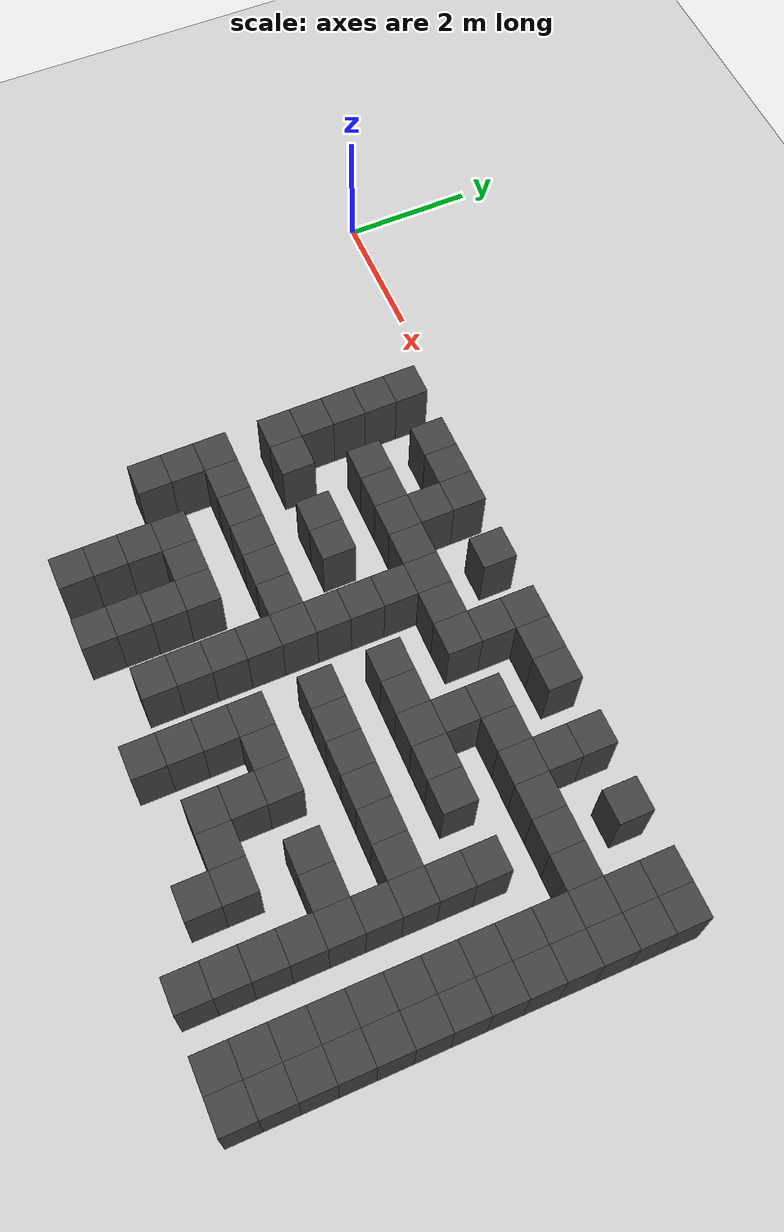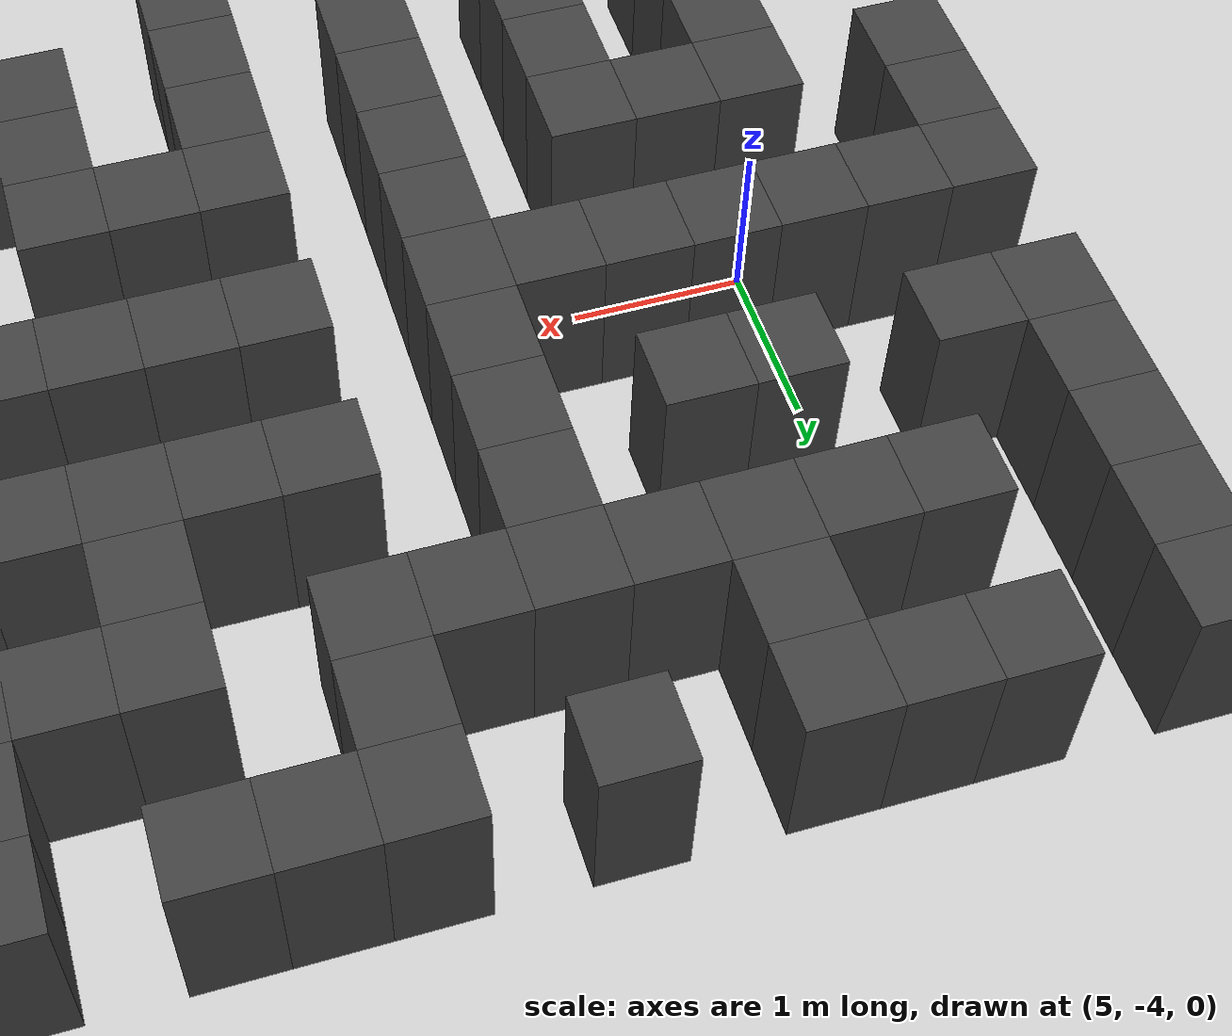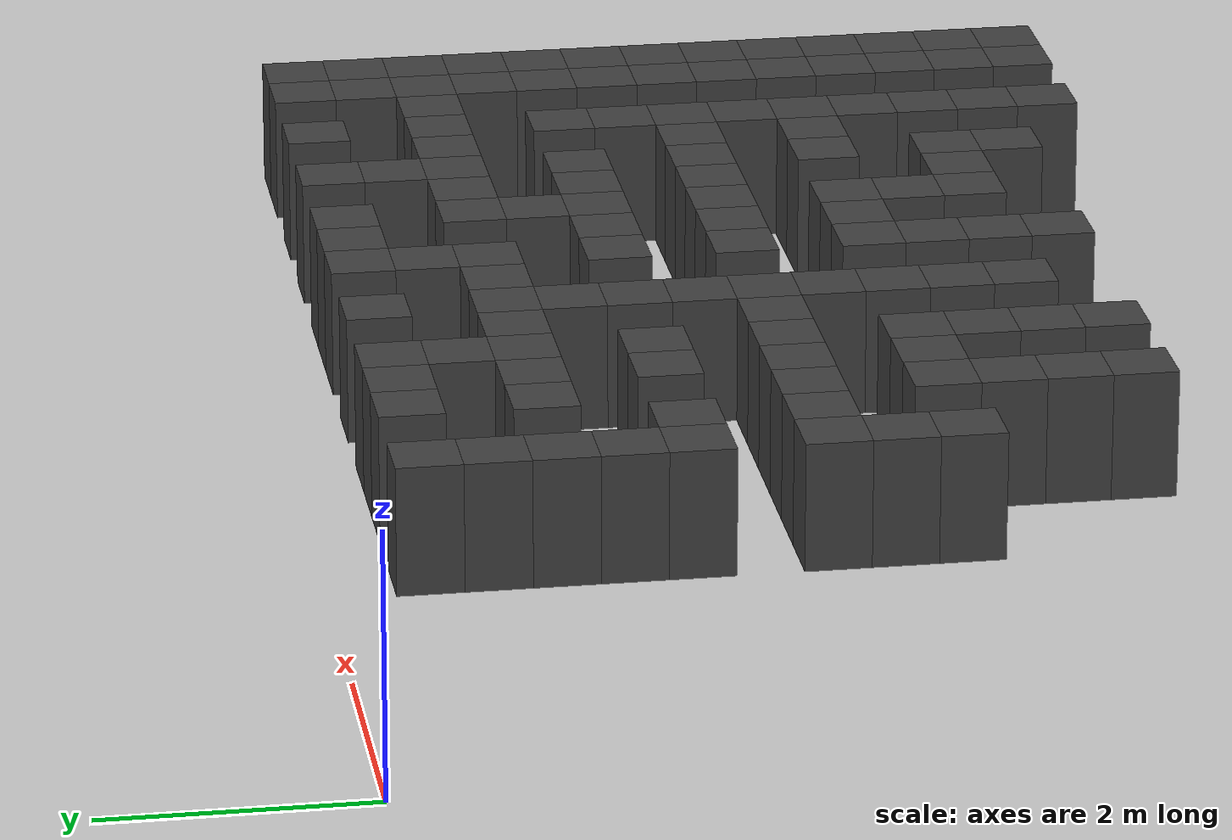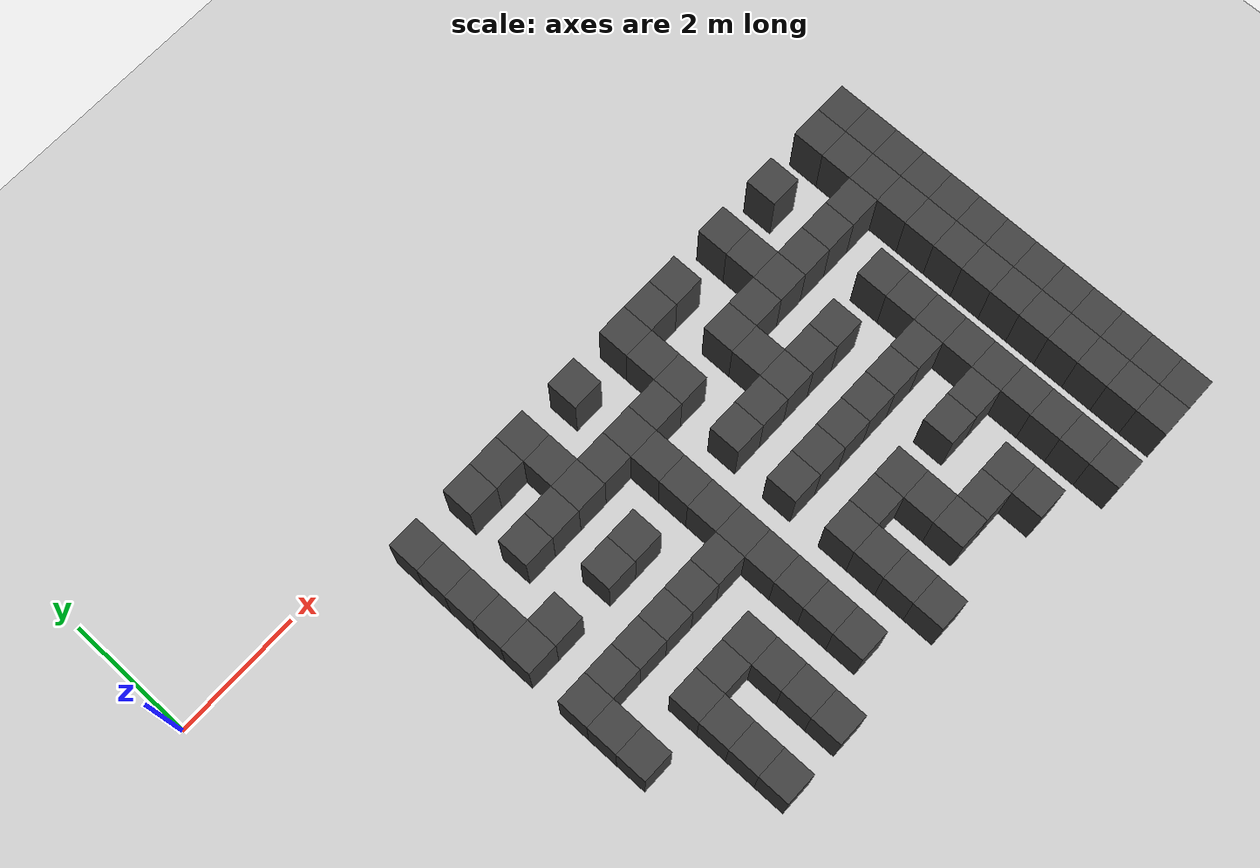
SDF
<sdf version="1.7">
 <world name="map_18228">
  <model name="ground_plane">
   <static>true</static>
   <link name="link">
    <collision name="collision">
     <geometry><plane><normal>0 0 1</normal><size>200 200</size></plane></geometry>
    </collision>
    <visual name="visual">
     <geometry><plane><normal>0 0 1</normal><size>200 200</size></plane></geometry>
     <material><ambient>0.8 0.8 0.8 1</ambient><diffuse>0.8 0.8 0.8 1</diffuse></material>
    </visual>
   </link>
  </model>
  <model name="maze_environment">
   <static>true</static>
   <link name="wall_674">
    <pose>3.750 -0.750 0.500 0 0 0</pose>
    <collision name="col"><geometry><box><size>0.5 0.5 1.0</size></box></geometry></collision>
    <visual name="vis">
     <geometry><box><size>0.5 0.5 1.0</size></box></geometry>
     <material><ambient>0.15 0.15 0.15 1</ambient><diffuse>0.25 0.25 0.25 1</diffuse></material>
    </visual>
   </link>
   <link name="wall_675">
    <pose>4.750 -0.750 0.500 0 0 0</pose>
    <collision name="col"><geometry><box><size>0.5 0.5 1.0</size></box></geometry></collision>
    <visual name="vis">
     <geometry><box><size>0.5 0.5 1.0</size></box></geometry>
     <material><ambient>0.15 0.15 0.15 1</ambient><diffuse>0.25 0.25 0.25 1</diffuse></material>
    </visual>
   </link>
   <link name="wall_676">
    <pose>5.250 -0.750 0.500 0 0 0</pose>
    <collision name="col"><geometry><box><size>0.5 0.5 1.0</size></box></geometry></collision>
    <visual name="vis">
     <geometry><box><size>0.5 0.5 1.0</size></box></geometry>
     <material><ambient>0.15 0.15 0.15 1</ambient><diffuse>0.25 0.25 0.25 1</diffuse></material>
    </visual>
   </link>
   <link name="wall_677">
    <pose>5.750 -0.750 0.500 0 0 0</pose>
    <collision name="col"><geometry><box><size>0.5 0.5 1.0</size></box></geometry></collision>
    <visual name="vis">
     <geometry><box><size>0.5 0.5 1.0</size></box></geometry>
     <material><ambient>0.15 0.15 0.15 1</ambient><diffuse>0.25 0.25 0.25 1</diffuse></material>
    </visual>
   </link>
   <link name="wall_678">
    <pose>6.750 -0.750 0.500 0 0 0</pose>
    <collision name="col"><geometry><box><size>0.5 0.5 1.0</size></box></geometry></collision>
    <visual name="vis">
     <geometry><box><size>0.5 0.5 1.0</size></box></geometry>
     <material><ambient>0.15 0.15 0.15 1</ambient><diffuse>0.25 0.25 0.25 1</diffuse></material>
    </visual>
   </link>
   <link name="wall_679">
    <pose>7.750 -0.750 0.500 0 0 0</pose>
    <collision name="col"><geometry><box><size>0.5 0.5 1.0</size></box></geometry></collision>
    <visual name="vis">
     <geometry><box><size>0.5 0.5 1.0</size></box></geometry>
     <material><ambient>0.15 0.15 0.15 1</ambient><diffuse>0.25 0.25 0.25 1</diffuse></material>
    </visual>
   </link>
   <link name="wall_680">
    <pose>8.250 -0.750 0.500 0 0 0</pose>
    <collision name="col"><geometry><box><size>0.5 0.5 1.0</size></box></geometry></collision>
    <visual name="vis">
     <geometry><box><size>0.5 0.5 1.0</size></box></geometry>
     <material><ambient>0.15 0.15 0.15 1</ambient><diffuse>0.25 0.25 0.25 1</diffuse></material>
    </visual>
   </link>
   <link name="wall_681">
    <pose>8.750 -0.750 0.500 0 0 0</pose>
    <collision name="col"><geometry><box><size>0.5 0.5 1.0</size></box></geometry></collision>
    <visual name="vis">
     <geometry><box><size>0.5 0.5 1.0</size></box></geometry>
     <material><ambient>0.15 0.15 0.15 1</ambient><diffuse>0.25 0.25 0.25 1</diffuse></material>
    </visual>
   </link>
   <link name="wall_682">
    <pose>9.750 -0.750 0.500 0 0 0</pose>
    <collision name="col"><geometry><box><size>0.5 0.5 1.0</size></box></geometry></collision>
    <visual name="vis">
     <geometry><box><size>0.5 0.5 1.0</size></box></geometry>
     <material><ambient>0.15 0.15 0.15 1</ambient><diffuse>0.25 0.25 0.25 1</diffuse></material>
    </visual>
   </link>
   <link name="wall_683">
    <pose>10.750 -0.750 0.500 0 0 0</pose>
    <collision name="col"><geometry><box><size>0.5 0.5 1.0</size></box></geometry></collision>
    <visual name="vis">
     <geometry><box><size>0.5 0.5 1.0</size></box></geometry>
     <material><ambient>0.15 0.15 0.15 1</ambient><diffuse>0.25 0.25 0.25 1</diffuse></material>
    </visual>
   </link>
   <link name="wall_684">
    <pose>11.750 -0.750 0.500 0 0 0</pose>
    <collision name="col"><geometry><box><size>0.5 0.5 1.0</size></box></geometry></collision>
    <visual name="vis">
     <geometry><box><size>0.5 0.5 1.0</size></box></geometry>
     <material><ambient>0.15 0.15 0.15 1</ambient><diffuse>0.25 0.25 0.25 1</diffuse></material>
    </visual>
   </link>
   <link name="wall_685">
    <pose>12.250 -0.750 0.500 0 0 0</pose>
    <collision name="col"><geometry><box><size>0.5 0.5 1.0</size></box></geometry></collision>
    <visual name="vis">
     <geometry><box><size>0.5 0.5 1.0</size></box></geometry>
     <material><ambient>0.15 0.15 0.15 1</ambient><diffuse>0.25 0.25 0.25 1</diffuse></material>
    </visual>
   </link>
   <link name="wall_694">
    <pose>3.750 -1.250 0.500 0 0 0</pose>
    <collision name="col"><geometry><box><size>0.5 0.5 1.0</size></box></geometry></collision>
    <visual name="vis">
     <geometry><box><size>0.5 0.5 1.0</size></box></geometry>
     <material><ambient>0.15 0.15 0.15 1</ambient><diffuse>0.25 0.25 0.25 1</diffuse></material>
    </visual>
   </link>
   <link name="wall_695">
    <pose>5.750 -1.250 0.500 0 0 0</pose>
    <collision name="col"><geometry><box><size>0.5 0.5 1.0</size></box></geometry></collision>
    <visual name="vis">
     <geometry><box><size>0.5 0.5 1.0</size></box></geometry>
     <material><ambient>0.15 0.15 0.15 1</ambient><diffuse>0.25 0.25 0.25 1</diffuse></material>
    </visual>
   </link>
   <link name="wall_696">
    <pose>7.750 -1.250 0.500 0 0 0</pose>
    <collision name="col"><geometry><box><size>0.5 0.5 1.0</size></box></geometry></collision>
    <visual name="vis">
     <geometry><box><size>0.5 0.5 1.0</size></box></geometry>
     <material><ambient>0.15 0.15 0.15 1</ambient><diffuse>0.25 0.25 0.25 1</diffuse></material>
    </visual>
   </link>
   <link name="wall_697">
    <pose>9.750 -1.250 0.500 0 0 0</pose>
    <collision name="col"><geometry><box><size>0.5 0.5 1.0</size></box></geometry></collision>
    <visual name="vis">
     <geometry><box><size>0.5 0.5 1.0</size></box></geometry>
     <material><ambient>0.15 0.15 0.15 1</ambient><diffuse>0.25 0.25 0.25 1</diffuse></material>
    </visual>
   </link>
   <link name="wall_698">
    <pose>11.750 -1.250 0.500 0 0 0</pose>
    <collision name="col"><geometry><box><size>0.5 0.5 1.0</size></box></geometry></collision>
    <visual name="vis">
     <geometry><box><size>0.5 0.5 1.0</size></box></geometry>
     <material><ambient>0.15 0.15 0.15 1</ambient><diffuse>0.25 0.25 0.25 1</diffuse></material>
    </visual>
   </link>
   <link name="wall_699">
    <pose>12.250 -1.250 0.500 0 0 0</pose>
    <collision name="col"><geometry><box><size>0.5 0.5 1.0</size></box></geometry></collision>
    <visual name="vis">
     <geometry><box><size>0.5 0.5 1.0</size></box></geometry>
     <material><ambient>0.15 0.15 0.15 1</ambient><diffuse>0.25 0.25 0.25 1</diffuse></material>
    </visual>
   </link>
   <link name="wall_722">
    <pose>3.750 -1.750 0.500 0 0 0</pose>
    <collision name="col"><geometry><box><size>0.5 0.5 1.0</size></box></geometry></collision>
    <visual name="vis">
     <geometry><box><size>0.5 0.5 1.0</size></box></geometry>
     <material><ambient>0.15 0.15 0.15 1</ambient><diffuse>0.25 0.25 0.25 1</diffuse></material>
    </visual>
   </link>
   <link name="wall_723">
    <pose>4.750 -1.750 0.500 0 0 0</pose>
    <collision name="col"><geometry><box><size>0.5 0.5 1.0</size></box></geometry></collision>
    <visual name="vis">
     <geometry><box><size>0.5 0.5 1.0</size></box></geometry>
     <material><ambient>0.15 0.15 0.15 1</ambient><diffuse>0.25 0.25 0.25 1</diffuse></material>
    </visual>
   </link>
   <link name="wall_724">
    <pose>5.250 -1.750 0.500 0 0 0</pose>
    <collision name="col"><geometry><box><size>0.5 0.5 1.0</size></box></geometry></collision>
    <visual name="vis">
     <geometry><box><size>0.5 0.5 1.0</size></box></geometry>
     <material><ambient>0.15 0.15 0.15 1</ambient><diffuse>0.25 0.25 0.25 1</diffuse></material>
    </visual>
   </link>
   <link name="wall_725">
    <pose>5.750 -1.750 0.500 0 0 0</pose>
    <collision name="col"><geometry><box><size>0.5 0.5 1.0</size></box></geometry></collision>
    <visual name="vis">
     <geometry><box><size>0.5 0.5 1.0</size></box></geometry>
     <material><ambient>0.15 0.15 0.15 1</ambient><diffuse>0.25 0.25 0.25 1</diffuse></material>
    </visual>
   </link>
   <link name="wall_726">
    <pose>6.250 -1.750 0.500 0 0 0</pose>
    <collision name="col"><geometry><box><size>0.5 0.5 1.0</size></box></geometry></collision>
    <visual name="vis">
     <geometry><box><size>0.5 0.5 1.0</size></box></geometry>
     <material><ambient>0.15 0.15 0.15 1</ambient><diffuse>0.25 0.25 0.25 1</diffuse></material>
    </visual>
   </link>
   <link name="wall_727">
    <pose>6.750 -1.750 0.500 0 0 0</pose>
    <collision name="col"><geometry><box><size>0.5 0.5 1.0</size></box></geometry></collision>
    <visual name="vis">
     <geometry><box><size>0.5 0.5 1.0</size></box></geometry>
     <material><ambient>0.15 0.15 0.15 1</ambient><diffuse>0.25 0.25 0.25 1</diffuse></material>
    </visual>
   </link>
   <link name="wall_728">
    <pose>7.250 -1.750 0.500 0 0 0</pose>
    <collision name="col"><geometry><box><size>0.5 0.5 1.0</size></box></geometry></collision>
    <visual name="vis">
     <geometry><box><size>0.5 0.5 1.0</size></box></geometry>
     <material><ambient>0.15 0.15 0.15 1</ambient><diffuse>0.25 0.25 0.25 1</diffuse></material>
    </visual>
   </link>
   <link name="wall_729">
    <pose>7.750 -1.750 0.500 0 0 0</pose>
    <collision name="col"><geometry><box><size>0.5 0.5 1.0</size></box></geometry></collision>
    <visual name="vis">
     <geometry><box><size>0.5 0.5 1.0</size></box></geometry>
     <material><ambient>0.15 0.15 0.15 1</ambient><diffuse>0.25 0.25 0.25 1</diffuse></material>
    </visual>
   </link>
   <link name="wall_730">
    <pose>8.750 -1.750 0.500 0 0 0</pose>
    <collision name="col"><geometry><box><size>0.5 0.5 1.0</size></box></geometry></collision>
    <visual name="vis">
     <geometry><box><size>0.5 0.5 1.0</size></box></geometry>
     <material><ambient>0.15 0.15 0.15 1</ambient><diffuse>0.25 0.25 0.25 1</diffuse></material>
    </visual>
   </link>
   <link name="wall_731">
    <pose>9.250 -1.750 0.500 0 0 0</pose>
    <collision name="col"><geometry><box><size>0.5 0.5 1.0</size></box></geometry></collision>
    <visual name="vis">
     <geometry><box><size>0.5 0.5 1.0</size></box></geometry>
     <material><ambient>0.15 0.15 0.15 1</ambient><diffuse>0.25 0.25 0.25 1</diffuse></material>
    </visual>
   </link>
   <link name="wall_732">
    <pose>9.750 -1.750 0.500 0 0 0</pose>
    <collision name="col"><geometry><box><size>0.5 0.5 1.0</size></box></geometry></collision>
    <visual name="vis">
     <geometry><box><size>0.5 0.5 1.0</size></box></geometry>
     <material><ambient>0.15 0.15 0.15 1</ambient><diffuse>0.25 0.25 0.25 1</diffuse></material>
    </visual>
   </link>
   <link name="wall_733">
    <pose>10.250 -1.750 0.500 0 0 0</pose>
    <collision name="col"><geometry><box><size>0.5 0.5 1.0</size></box></geometry></collision>
    <visual name="vis">
     <geometry><box><size>0.5 0.5 1.0</size></box></geometry>
     <material><ambient>0.15 0.15 0.15 1</ambient><diffuse>0.25 0.25 0.25 1</diffuse></material>
    </visual>
   </link>
   <link name="wall_734">
    <pose>10.750 -1.750 0.500 0 0 0</pose>
    <collision name="col"><geometry><box><size>0.5 0.5 1.0</size></box></geometry></collision>
    <visual name="vis">
     <geometry><box><size>0.5 0.5 1.0</size></box></geometry>
     <material><ambient>0.15 0.15 0.15 1</ambient><diffuse>0.25 0.25 0.25 1</diffuse></material>
    </visual>
   </link>
   <link name="wall_735">
    <pose>11.250 -1.750 0.500 0 0 0</pose>
    <collision name="col"><geometry><box><size>0.5 0.5 1.0</size></box></geometry></collision>
    <visual name="vis">
     <geometry><box><size>0.5 0.5 1.0</size></box></geometry>
     <material><ambient>0.15 0.15 0.15 1</ambient><diffuse>0.25 0.25 0.25 1</diffuse></material>
    </visual>
   </link>
   <link name="wall_736">
    <pose>11.750 -1.750 0.500 0 0 0</pose>
    <collision name="col"><geometry><box><size>0.5 0.5 1.0</size></box></geometry></collision>
    <visual name="vis">
     <geometry><box><size>0.5 0.5 1.0</size></box></geometry>
     <material><ambient>0.15 0.15 0.15 1</ambient><diffuse>0.25 0.25 0.25 1</diffuse></material>
    </visual>
   </link>
   <link name="wall_737">
    <pose>12.250 -1.750 0.500 0 0 0</pose>
    <collision name="col"><geometry><box><size>0.5 0.5 1.0</size></box></geometry></collision>
    <visual name="vis">
     <geometry><box><size>0.5 0.5 1.0</size></box></geometry>
     <material><ambient>0.15 0.15 0.15 1</ambient><diffuse>0.25 0.25 0.25 1</diffuse></material>
    </visual>
   </link>
   <link name="wall_747">
    <pose>3.750 -2.250 0.500 0 0 0</pose>
    <collision name="col"><geometry><box><size>0.5 0.5 1.0</size></box></geometry></collision>
    <visual name="vis">
     <geometry><box><size>0.5 0.5 1.0</size></box></geometry>
     <material><ambient>0.15 0.15 0.15 1</ambient><diffuse>0.25 0.25 0.25 1</diffuse></material>
    </visual>
   </link>
   <link name="wall_748">
    <pose>6.750 -2.250 0.500 0 0 0</pose>
    <collision name="col"><geometry><box><size>0.5 0.5 1.0</size></box></geometry></collision>
    <visual name="vis">
     <geometry><box><size>0.5 0.5 1.0</size></box></geometry>
     <material><ambient>0.15 0.15 0.15 1</ambient><diffuse>0.25 0.25 0.25 1</diffuse></material>
    </visual>
   </link>
   <link name="wall_749">
    <pose>8.750 -2.250 0.500 0 0 0</pose>
    <collision name="col"><geometry><box><size>0.5 0.5 1.0</size></box></geometry></collision>
    <visual name="vis">
     <geometry><box><size>0.5 0.5 1.0</size></box></geometry>
     <material><ambient>0.15 0.15 0.15 1</ambient><diffuse>0.25 0.25 0.25 1</diffuse></material>
    </visual>
   </link>
   <link name="wall_750">
    <pose>11.750 -2.250 0.500 0 0 0</pose>
    <collision name="col"><geometry><box><size>0.5 0.5 1.0</size></box></geometry></collision>
    <visual name="vis">
     <geometry><box><size>0.5 0.5 1.0</size></box></geometry>
     <material><ambient>0.15 0.15 0.15 1</ambient><diffuse>0.25 0.25 0.25 1</diffuse></material>
    </visual>
   </link>
   <link name="wall_751">
    <pose>12.250 -2.250 0.500 0 0 0</pose>
    <collision name="col"><geometry><box><size>0.5 0.5 1.0</size></box></geometry></collision>
    <visual name="vis">
     <geometry><box><size>0.5 0.5 1.0</size></box></geometry>
     <material><ambient>0.15 0.15 0.15 1</ambient><diffuse>0.25 0.25 0.25 1</diffuse></material>
    </visual>
   </link>
   <link name="wall_773">
    <pose>3.750 -2.750 0.500 0 0 0</pose>
    <collision name="col"><geometry><box><size>0.5 0.5 1.0</size></box></geometry></collision>
    <visual name="vis">
     <geometry><box><size>0.5 0.5 1.0</size></box></geometry>
     <material><ambient>0.15 0.15 0.15 1</ambient><diffuse>0.25 0.25 0.25 1</diffuse></material>
    </visual>
   </link>
   <link name="wall_774">
    <pose>4.250 -2.750 0.500 0 0 0</pose>
    <collision name="col"><geometry><box><size>0.5 0.5 1.0</size></box></geometry></collision>
    <visual name="vis">
     <geometry><box><size>0.5 0.5 1.0</size></box></geometry>
     <material><ambient>0.15 0.15 0.15 1</ambient><diffuse>0.25 0.25 0.25 1</diffuse></material>
    </visual>
   </link>
   <link name="wall_775">
    <pose>5.250 -2.750 0.500 0 0 0</pose>
    <collision name="col"><geometry><box><size>0.5 0.5 1.0</size></box></geometry></collision>
    <visual name="vis">
     <geometry><box><size>0.5 0.5 1.0</size></box></geometry>
     <material><ambient>0.15 0.15 0.15 1</ambient><diffuse>0.25 0.25 0.25 1</diffuse></material>
    </visual>
   </link>
   <link name="wall_776">
    <pose>5.750 -2.750 0.500 0 0 0</pose>
    <collision name="col"><geometry><box><size>0.5 0.5 1.0</size></box></geometry></collision>
    <visual name="vis">
     <geometry><box><size>0.5 0.5 1.0</size></box></geometry>
     <material><ambient>0.15 0.15 0.15 1</ambient><diffuse>0.25 0.25 0.25 1</diffuse></material>
    </visual>
   </link>
   <link name="wall_777">
    <pose>6.750 -2.750 0.500 0 0 0</pose>
    <collision name="col"><geometry><box><size>0.5 0.5 1.0</size></box></geometry></collision>
    <visual name="vis">
     <geometry><box><size>0.5 0.5 1.0</size></box></geometry>
     <material><ambient>0.15 0.15 0.15 1</ambient><diffuse>0.25 0.25 0.25 1</diffuse></material>
    </visual>
   </link>
   <link name="wall_778">
    <pose>7.750 -2.750 0.500 0 0 0</pose>
    <collision name="col"><geometry><box><size>0.5 0.5 1.0</size></box></geometry></collision>
    <visual name="vis">
     <geometry><box><size>0.5 0.5 1.0</size></box></geometry>
     <material><ambient>0.15 0.15 0.15 1</ambient><diffuse>0.25 0.25 0.25 1</diffuse></material>
    </visual>
   </link>
   <link name="wall_779">
    <pose>8.250 -2.750 0.500 0 0 0</pose>
    <collision name="col"><geometry><box><size>0.5 0.5 1.0</size></box></geometry></collision>
    <visual name="vis">
     <geometry><box><size>0.5 0.5 1.0</size></box></geometry>
     <material><ambient>0.15 0.15 0.15 1</ambient><diffuse>0.25 0.25 0.25 1</diffuse></material>
    </visual>
   </link>
   <link name="wall_780">
    <pose>8.750 -2.750 0.500 0 0 0</pose>
    <collision name="col"><geometry><box><size>0.5 0.5 1.0</size></box></geometry></collision>
    <visual name="vis">
     <geometry><box><size>0.5 0.5 1.0</size></box></geometry>
     <material><ambient>0.15 0.15 0.15 1</ambient><diffuse>0.25 0.25 0.25 1</diffuse></material>
    </visual>
   </link>
   <link name="wall_781">
    <pose>9.250 -2.750 0.500 0 0 0</pose>
    <collision name="col"><geometry><box><size>0.5 0.5 1.0</size></box></geometry></collision>
    <visual name="vis">
     <geometry><box><size>0.5 0.5 1.0</size></box></geometry>
     <material><ambient>0.15 0.15 0.15 1</ambient><diffuse>0.25 0.25 0.25 1</diffuse></material>
    </visual>
   </link>
   <link name="wall_782">
    <pose>9.750 -2.750 0.500 0 0 0</pose>
    <collision name="col"><geometry><box><size>0.5 0.5 1.0</size></box></geometry></collision>
    <visual name="vis">
     <geometry><box><size>0.5 0.5 1.0</size></box></geometry>
     <material><ambient>0.15 0.15 0.15 1</ambient><diffuse>0.25 0.25 0.25 1</diffuse></material>
    </visual>
   </link>
   <link name="wall_783">
    <pose>10.750 -2.750 0.500 0 0 0</pose>
    <collision name="col"><geometry><box><size>0.5 0.5 1.0</size></box></geometry></collision>
    <visual name="vis">
     <geometry><box><size>0.5 0.5 1.0</size></box></geometry>
     <material><ambient>0.15 0.15 0.15 1</ambient><diffuse>0.25 0.25 0.25 1</diffuse></material>
    </visual>
   </link>
   <link name="wall_784">
    <pose>11.750 -2.750 0.500 0 0 0</pose>
    <collision name="col"><geometry><box><size>0.5 0.5 1.0</size></box></geometry></collision>
    <visual name="vis">
     <geometry><box><size>0.5 0.5 1.0</size></box></geometry>
     <material><ambient>0.15 0.15 0.15 1</ambient><diffuse>0.25 0.25 0.25 1</diffuse></material>
    </visual>
   </link>
   <link name="wall_785">
    <pose>12.250 -2.750 0.500 0 0 0</pose>
    <collision name="col"><geometry><box><size>0.5 0.5 1.0</size></box></geometry></collision>
    <visual name="vis">
     <geometry><box><size>0.5 0.5 1.0</size></box></geometry>
     <material><ambient>0.15 0.15 0.15 1</ambient><diffuse>0.25 0.25 0.25 1</diffuse></material>
    </visual>
   </link>
   <link name="wall_791">
    <pose>6.750 -3.250 0.500 0 0 0</pose>
    <collision name="col"><geometry><box><size>0.5 0.5 1.0</size></box></geometry></collision>
    <visual name="vis">
     <geometry><box><size>0.5 0.5 1.0</size></box></geometry>
     <material><ambient>0.15 0.15 0.15 1</ambient><diffuse>0.25 0.25 0.25 1</diffuse></material>
    </visual>
   </link>
   <link name="wall_792">
    <pose>10.750 -3.250 0.500 0 0 0</pose>
    <collision name="col"><geometry><box><size>0.5 0.5 1.0</size></box></geometry></collision>
    <visual name="vis">
     <geometry><box><size>0.5 0.5 1.0</size></box></geometry>
     <material><ambient>0.15 0.15 0.15 1</ambient><diffuse>0.25 0.25 0.25 1</diffuse></material>
    </visual>
   </link>
   <link name="wall_793">
    <pose>11.750 -3.250 0.500 0 0 0</pose>
    <collision name="col"><geometry><box><size>0.5 0.5 1.0</size></box></geometry></collision>
    <visual name="vis">
     <geometry><box><size>0.5 0.5 1.0</size></box></geometry>
     <material><ambient>0.15 0.15 0.15 1</ambient><diffuse>0.25 0.25 0.25 1</diffuse></material>
    </visual>
   </link>
   <link name="wall_794">
    <pose>12.250 -3.250 0.500 0 0 0</pose>
    <collision name="col"><geometry><box><size>0.5 0.5 1.0</size></box></geometry></collision>
    <visual name="vis">
     <geometry><box><size>0.5 0.5 1.0</size></box></geometry>
     <material><ambient>0.15 0.15 0.15 1</ambient><diffuse>0.25 0.25 0.25 1</diffuse></material>
    </visual>
   </link>
   <link name="wall_820">
    <pose>3.750 -3.750 0.500 0 0 0</pose>
    <collision name="col"><geometry><box><size>0.5 0.5 1.0</size></box></geometry></collision>
    <visual name="vis">
     <geometry><box><size>0.5 0.5 1.0</size></box></geometry>
     <material><ambient>0.15 0.15 0.15 1</ambient><diffuse>0.25 0.25 0.25 1</diffuse></material>
    </visual>
   </link>
   <link name="wall_821">
    <pose>4.250 -3.750 0.500 0 0 0</pose>
    <collision name="col"><geometry><box><size>0.5 0.5 1.0</size></box></geometry></collision>
    <visual name="vis">
     <geometry><box><size>0.5 0.5 1.0</size></box></geometry>
     <material><ambient>0.15 0.15 0.15 1</ambient><diffuse>0.25 0.25 0.25 1</diffuse></material>
    </visual>
   </link>
   <link name="wall_822">
    <pose>4.750 -3.750 0.500 0 0 0</pose>
    <collision name="col"><geometry><box><size>0.5 0.5 1.0</size></box></geometry></collision>
    <visual name="vis">
     <geometry><box><size>0.5 0.5 1.0</size></box></geometry>
     <material><ambient>0.15 0.15 0.15 1</ambient><diffuse>0.25 0.25 0.25 1</diffuse></material>
    </visual>
   </link>
   <link name="wall_823">
    <pose>5.250 -3.750 0.500 0 0 0</pose>
    <collision name="col"><geometry><box><size>0.5 0.5 1.0</size></box></geometry></collision>
    <visual name="vis">
     <geometry><box><size>0.5 0.5 1.0</size></box></geometry>
     <material><ambient>0.15 0.15 0.15 1</ambient><diffuse>0.25 0.25 0.25 1</diffuse></material>
    </visual>
   </link>
   <link name="wall_824">
    <pose>5.750 -3.750 0.500 0 0 0</pose>
    <collision name="col"><geometry><box><size>0.5 0.5 1.0</size></box></geometry></collision>
    <visual name="vis">
     <geometry><box><size>0.5 0.5 1.0</size></box></geometry>
     <material><ambient>0.15 0.15 0.15 1</ambient><diffuse>0.25 0.25 0.25 1</diffuse></material>
    </visual>
   </link>
   <link name="wall_825">
    <pose>6.250 -3.750 0.500 0 0 0</pose>
    <collision name="col"><geometry><box><size>0.5 0.5 1.0</size></box></geometry></collision>
    <visual name="vis">
     <geometry><box><size>0.5 0.5 1.0</size></box></geometry>
     <material><ambient>0.15 0.15 0.15 1</ambient><diffuse>0.25 0.25 0.25 1</diffuse></material>
    </visual>
   </link>
   <link name="wall_826">
    <pose>6.750 -3.750 0.500 0 0 0</pose>
    <collision name="col"><geometry><box><size>0.5 0.5 1.0</size></box></geometry></collision>
    <visual name="vis">
     <geometry><box><size>0.5 0.5 1.0</size></box></geometry>
     <material><ambient>0.15 0.15 0.15 1</ambient><diffuse>0.25 0.25 0.25 1</diffuse></material>
    </visual>
   </link>
   <link name="wall_827">
    <pose>7.750 -3.750 0.500 0 0 0</pose>
    <collision name="col"><geometry><box><size>0.5 0.5 1.0</size></box></geometry></collision>
    <visual name="vis">
     <geometry><box><size>0.5 0.5 1.0</size></box></geometry>
     <material><ambient>0.15 0.15 0.15 1</ambient><diffuse>0.25 0.25 0.25 1</diffuse></material>
    </visual>
   </link>
   <link name="wall_828">
    <pose>8.250 -3.750 0.500 0 0 0</pose>
    <collision name="col"><geometry><box><size>0.5 0.5 1.0</size></box></geometry></collision>
    <visual name="vis">
     <geometry><box><size>0.5 0.5 1.0</size></box></geometry>
     <material><ambient>0.15 0.15 0.15 1</ambient><diffuse>0.25 0.25 0.25 1</diffuse></material>
    </visual>
   </link>
   <link name="wall_829">
    <pose>8.750 -3.750 0.500 0 0 0</pose>
    <collision name="col"><geometry><box><size>0.5 0.5 1.0</size></box></geometry></collision>
    <visual name="vis">
     <geometry><box><size>0.5 0.5 1.0</size></box></geometry>
     <material><ambient>0.15 0.15 0.15 1</ambient><diffuse>0.25 0.25 0.25 1</diffuse></material>
    </visual>
   </link>
   <link name="wall_830">
    <pose>9.250 -3.750 0.500 0 0 0</pose>
    <collision name="col"><geometry><box><size>0.5 0.5 1.0</size></box></geometry></collision>
    <visual name="vis">
     <geometry><box><size>0.5 0.5 1.0</size></box></geometry>
     <material><ambient>0.15 0.15 0.15 1</ambient><diffuse>0.25 0.25 0.25 1</diffuse></material>
    </visual>
   </link>
   <link name="wall_831">
    <pose>9.750 -3.750 0.500 0 0 0</pose>
    <collision name="col"><geometry><box><size>0.5 0.5 1.0</size></box></geometry></collision>
    <visual name="vis">
     <geometry><box><size>0.5 0.5 1.0</size></box></geometry>
     <material><ambient>0.15 0.15 0.15 1</ambient><diffuse>0.25 0.25 0.25 1</diffuse></material>
    </visual>
   </link>
   <link name="wall_832">
    <pose>10.250 -3.750 0.500 0 0 0</pose>
    <collision name="col"><geometry><box><size>0.5 0.5 1.0</size></box></geometry></collision>
    <visual name="vis">
     <geometry><box><size>0.5 0.5 1.0</size></box></geometry>
     <material><ambient>0.15 0.15 0.15 1</ambient><diffuse>0.25 0.25 0.25 1</diffuse></material>
    </visual>
   </link>
   <link name="wall_833">
    <pose>10.750 -3.750 0.500 0 0 0</pose>
    <collision name="col"><geometry><box><size>0.5 0.5 1.0</size></box></geometry></collision>
    <visual name="vis">
     <geometry><box><size>0.5 0.5 1.0</size></box></geometry>
     <material><ambient>0.15 0.15 0.15 1</ambient><diffuse>0.25 0.25 0.25 1</diffuse></material>
    </visual>
   </link>
   <link name="wall_834">
    <pose>11.750 -3.750 0.500 0 0 0</pose>
    <collision name="col"><geometry><box><size>0.5 0.5 1.0</size></box></geometry></collision>
    <visual name="vis">
     <geometry><box><size>0.5 0.5 1.0</size></box></geometry>
     <material><ambient>0.15 0.15 0.15 1</ambient><diffuse>0.25 0.25 0.25 1</diffuse></material>
    </visual>
   </link>
   <link name="wall_835">
    <pose>12.250 -3.750 0.500 0 0 0</pose>
    <collision name="col"><geometry><box><size>0.5 0.5 1.0</size></box></geometry></collision>
    <visual name="vis">
     <geometry><box><size>0.5 0.5 1.0</size></box></geometry>
     <material><ambient>0.15 0.15 0.15 1</ambient><diffuse>0.25 0.25 0.25 1</diffuse></material>
    </visual>
   </link>
   <link name="wall_842">
    <pose>3.750 -4.250 0.500 0 0 0</pose>
    <collision name="col"><geometry><box><size>0.5 0.5 1.0</size></box></geometry></collision>
    <visual name="vis">
     <geometry><box><size>0.5 0.5 1.0</size></box></geometry>
     <material><ambient>0.15 0.15 0.15 1</ambient><diffuse>0.25 0.25 0.25 1</diffuse></material>
    </visual>
   </link>
   <link name="wall_843">
    <pose>6.750 -4.250 0.500 0 0 0</pose>
    <collision name="col"><geometry><box><size>0.5 0.5 1.0</size></box></geometry></collision>
    <visual name="vis">
     <geometry><box><size>0.5 0.5 1.0</size></box></geometry>
     <material><ambient>0.15 0.15 0.15 1</ambient><diffuse>0.25 0.25 0.25 1</diffuse></material>
    </visual>
   </link>
   <link name="wall_844">
    <pose>10.750 -4.250 0.500 0 0 0</pose>
    <collision name="col"><geometry><box><size>0.5 0.5 1.0</size></box></geometry></collision>
    <visual name="vis">
     <geometry><box><size>0.5 0.5 1.0</size></box></geometry>
     <material><ambient>0.15 0.15 0.15 1</ambient><diffuse>0.25 0.25 0.25 1</diffuse></material>
    </visual>
   </link>
   <link name="wall_845">
    <pose>11.750 -4.250 0.500 0 0 0</pose>
    <collision name="col"><geometry><box><size>0.5 0.5 1.0</size></box></geometry></collision>
    <visual name="vis">
     <geometry><box><size>0.5 0.5 1.0</size></box></geometry>
     <material><ambient>0.15 0.15 0.15 1</ambient><diffuse>0.25 0.25 0.25 1</diffuse></material>
    </visual>
   </link>
   <link name="wall_846">
    <pose>12.250 -4.250 0.500 0 0 0</pose>
    <collision name="col"><geometry><box><size>0.5 0.5 1.0</size></box></geometry></collision>
    <visual name="vis">
     <geometry><box><size>0.5 0.5 1.0</size></box></geometry>
     <material><ambient>0.15 0.15 0.15 1</ambient><diffuse>0.25 0.25 0.25 1</diffuse></material>
    </visual>
   </link>
   <link name="wall_868">
    <pose>3.750 -4.750 0.500 0 0 0</pose>
    <collision name="col"><geometry><box><size>0.5 0.5 1.0</size></box></geometry></collision>
    <visual name="vis">
     <geometry><box><size>0.5 0.5 1.0</size></box></geometry>
     <material><ambient>0.15 0.15 0.15 1</ambient><diffuse>0.25 0.25 0.25 1</diffuse></material>
    </visual>
   </link>
   <link name="wall_869">
    <pose>4.750 -4.750 0.500 0 0 0</pose>
    <collision name="col"><geometry><box><size>0.5 0.5 1.0</size></box></geometry></collision>
    <visual name="vis">
     <geometry><box><size>0.5 0.5 1.0</size></box></geometry>
     <material><ambient>0.15 0.15 0.15 1</ambient><diffuse>0.25 0.25 0.25 1</diffuse></material>
    </visual>
   </link>
   <link name="wall_870">
    <pose>5.250 -4.750 0.500 0 0 0</pose>
    <collision name="col"><geometry><box><size>0.5 0.5 1.0</size></box></geometry></collision>
    <visual name="vis">
     <geometry><box><size>0.5 0.5 1.0</size></box></geometry>
     <material><ambient>0.15 0.15 0.15 1</ambient><diffuse>0.25 0.25 0.25 1</diffuse></material>
    </visual>
   </link>
   <link name="wall_871">
    <pose>5.750 -4.750 0.500 0 0 0</pose>
    <collision name="col"><geometry><box><size>0.5 0.5 1.0</size></box></geometry></collision>
    <visual name="vis">
     <geometry><box><size>0.5 0.5 1.0</size></box></geometry>
     <material><ambient>0.15 0.15 0.15 1</ambient><diffuse>0.25 0.25 0.25 1</diffuse></material>
    </visual>
   </link>
   <link name="wall_872">
    <pose>6.750 -4.750 0.500 0 0 0</pose>
    <collision name="col"><geometry><box><size>0.5 0.5 1.0</size></box></geometry></collision>
    <visual name="vis">
     <geometry><box><size>0.5 0.5 1.0</size></box></geometry>
     <material><ambient>0.15 0.15 0.15 1</ambient><diffuse>0.25 0.25 0.25 1</diffuse></material>
    </visual>
   </link>
   <link name="wall_873">
    <pose>7.750 -4.750 0.500 0 0 0</pose>
    <collision name="col"><geometry><box><size>0.5 0.5 1.0</size></box></geometry></collision>
    <visual name="vis">
     <geometry><box><size>0.5 0.5 1.0</size></box></geometry>
     <material><ambient>0.15 0.15 0.15 1</ambient><diffuse>0.25 0.25 0.25 1</diffuse></material>
    </visual>
   </link>
   <link name="wall_874">
    <pose>8.250 -4.750 0.500 0 0 0</pose>
    <collision name="col"><geometry><box><size>0.5 0.5 1.0</size></box></geometry></collision>
    <visual name="vis">
     <geometry><box><size>0.5 0.5 1.0</size></box></geometry>
     <material><ambient>0.15 0.15 0.15 1</ambient><diffuse>0.25 0.25 0.25 1</diffuse></material>
    </visual>
   </link>
   <link name="wall_875">
    <pose>8.750 -4.750 0.500 0 0 0</pose>
    <collision name="col"><geometry><box><size>0.5 0.5 1.0</size></box></geometry></collision>
    <visual name="vis">
     <geometry><box><size>0.5 0.5 1.0</size></box></geometry>
     <material><ambient>0.15 0.15 0.15 1</ambient><diffuse>0.25 0.25 0.25 1</diffuse></material>
    </visual>
   </link>
   <link name="wall_876">
    <pose>9.750 -4.750 0.500 0 0 0</pose>
    <collision name="col"><geometry><box><size>0.5 0.5 1.0</size></box></geometry></collision>
    <visual name="vis">
     <geometry><box><size>0.5 0.5 1.0</size></box></geometry>
     <material><ambient>0.15 0.15 0.15 1</ambient><diffuse>0.25 0.25 0.25 1</diffuse></material>
    </visual>
   </link>
   <link name="wall_877">
    <pose>10.250 -4.750 0.500 0 0 0</pose>
    <collision name="col"><geometry><box><size>0.5 0.5 1.0</size></box></geometry></collision>
    <visual name="vis">
     <geometry><box><size>0.5 0.5 1.0</size></box></geometry>
     <material><ambient>0.15 0.15 0.15 1</ambient><diffuse>0.25 0.25 0.25 1</diffuse></material>
    </visual>
   </link>
   <link name="wall_878">
    <pose>10.750 -4.750 0.500 0 0 0</pose>
    <collision name="col"><geometry><box><size>0.5 0.5 1.0</size></box></geometry></collision>
    <visual name="vis">
     <geometry><box><size>0.5 0.5 1.0</size></box></geometry>
     <material><ambient>0.15 0.15 0.15 1</ambient><diffuse>0.25 0.25 0.25 1</diffuse></material>
    </visual>
   </link>
   <link name="wall_879">
    <pose>11.750 -4.750 0.500 0 0 0</pose>
    <collision name="col"><geometry><box><size>0.5 0.5 1.0</size></box></geometry></collision>
    <visual name="vis">
     <geometry><box><size>0.5 0.5 1.0</size></box></geometry>
     <material><ambient>0.15 0.15 0.15 1</ambient><diffuse>0.25 0.25 0.25 1</diffuse></material>
    </visual>
   </link>
   <link name="wall_880">
    <pose>12.250 -4.750 0.500 0 0 0</pose>
    <collision name="col"><geometry><box><size>0.5 0.5 1.0</size></box></geometry></collision>
    <visual name="vis">
     <geometry><box><size>0.5 0.5 1.0</size></box></geometry>
     <material><ambient>0.15 0.15 0.15 1</ambient><diffuse>0.25 0.25 0.25 1</diffuse></material>
    </visual>
   </link>
   <link name="wall_890">
    <pose>4.750 -5.250 0.500 0 0 0</pose>
    <collision name="col"><geometry><box><size>0.5 0.5 1.0</size></box></geometry></collision>
    <visual name="vis">
     <geometry><box><size>0.5 0.5 1.0</size></box></geometry>
     <material><ambient>0.15 0.15 0.15 1</ambient><diffuse>0.25 0.25 0.25 1</diffuse></material>
    </visual>
   </link>
   <link name="wall_891">
    <pose>5.750 -5.250 0.500 0 0 0</pose>
    <collision name="col"><geometry><box><size>0.5 0.5 1.0</size></box></geometry></collision>
    <visual name="vis">
     <geometry><box><size>0.5 0.5 1.0</size></box></geometry>
     <material><ambient>0.15 0.15 0.15 1</ambient><diffuse>0.25 0.25 0.25 1</diffuse></material>
    </visual>
   </link>
   <link name="wall_892">
    <pose>6.750 -5.250 0.500 0 0 0</pose>
    <collision name="col"><geometry><box><size>0.5 0.5 1.0</size></box></geometry></collision>
    <visual name="vis">
     <geometry><box><size>0.5 0.5 1.0</size></box></geometry>
     <material><ambient>0.15 0.15 0.15 1</ambient><diffuse>0.25 0.25 0.25 1</diffuse></material>
    </visual>
   </link>
   <link name="wall_893">
    <pose>7.750 -5.250 0.500 0 0 0</pose>
    <collision name="col"><geometry><box><size>0.5 0.5 1.0</size></box></geometry></collision>
    <visual name="vis">
     <geometry><box><size>0.5 0.5 1.0</size></box></geometry>
     <material><ambient>0.15 0.15 0.15 1</ambient><diffuse>0.25 0.25 0.25 1</diffuse></material>
    </visual>
   </link>
   <link name="wall_894">
    <pose>8.750 -5.250 0.500 0 0 0</pose>
    <collision name="col"><geometry><box><size>0.5 0.5 1.0</size></box></geometry></collision>
    <visual name="vis">
     <geometry><box><size>0.5 0.5 1.0</size></box></geometry>
     <material><ambient>0.15 0.15 0.15 1</ambient><diffuse>0.25 0.25 0.25 1</diffuse></material>
    </visual>
   </link>
   <link name="wall_895">
    <pose>10.750 -5.250 0.500 0 0 0</pose>
    <collision name="col"><geometry><box><size>0.5 0.5 1.0</size></box></geometry></collision>
    <visual name="vis">
     <geometry><box><size>0.5 0.5 1.0</size></box></geometry>
     <material><ambient>0.15 0.15 0.15 1</ambient><diffuse>0.25 0.25 0.25 1</diffuse></material>
    </visual>
   </link>
   <link name="wall_896">
    <pose>11.750 -5.250 0.500 0 0 0</pose>
    <collision name="col"><geometry><box><size>0.5 0.5 1.0</size></box></geometry></collision>
    <visual name="vis">
     <geometry><box><size>0.5 0.5 1.0</size></box></geometry>
     <material><ambient>0.15 0.15 0.15 1</ambient><diffuse>0.25 0.25 0.25 1</diffuse></material>
    </visual>
   </link>
   <link name="wall_897">
    <pose>12.250 -5.250 0.500 0 0 0</pose>
    <collision name="col"><geometry><box><size>0.5 0.5 1.0</size></box></geometry></collision>
    <visual name="vis">
     <geometry><box><size>0.5 0.5 1.0</size></box></geometry>
     <material><ambient>0.15 0.15 0.15 1</ambient><diffuse>0.25 0.25 0.25 1</diffuse></material>
    </visual>
   </link>
   <link name="wall_923">
    <pose>4.750 -5.750 0.500 0 0 0</pose>
    <collision name="col"><geometry><box><size>0.5 0.5 1.0</size></box></geometry></collision>
    <visual name="vis">
     <geometry><box><size>0.5 0.5 1.0</size></box></geometry>
     <material><ambient>0.15 0.15 0.15 1</ambient><diffuse>0.25 0.25 0.25 1</diffuse></material>
    </visual>
   </link>
   <link name="wall_924">
    <pose>5.750 -5.750 0.500 0 0 0</pose>
    <collision name="col"><geometry><box><size>0.5 0.5 1.0</size></box></geometry></collision>
    <visual name="vis">
     <geometry><box><size>0.5 0.5 1.0</size></box></geometry>
     <material><ambient>0.15 0.15 0.15 1</ambient><diffuse>0.25 0.25 0.25 1</diffuse></material>
    </visual>
   </link>
   <link name="wall_925">
    <pose>6.750 -5.750 0.500 0 0 0</pose>
    <collision name="col"><geometry><box><size>0.5 0.5 1.0</size></box></geometry></collision>
    <visual name="vis">
     <geometry><box><size>0.5 0.5 1.0</size></box></geometry>
     <material><ambient>0.15 0.15 0.15 1</ambient><diffuse>0.25 0.25 0.25 1</diffuse></material>
    </visual>
   </link>
   <link name="wall_926">
    <pose>7.750 -5.750 0.500 0 0 0</pose>
    <collision name="col"><geometry><box><size>0.5 0.5 1.0</size></box></geometry></collision>
    <visual name="vis">
     <geometry><box><size>0.5 0.5 1.0</size></box></geometry>
     <material><ambient>0.15 0.15 0.15 1</ambient><diffuse>0.25 0.25 0.25 1</diffuse></material>
    </visual>
   </link>
   <link name="wall_927">
    <pose>8.750 -5.750 0.500 0 0 0</pose>
    <collision name="col"><geometry><box><size>0.5 0.5 1.0</size></box></geometry></collision>
    <visual name="vis">
     <geometry><box><size>0.5 0.5 1.0</size></box></geometry>
     <material><ambient>0.15 0.15 0.15 1</ambient><diffuse>0.25 0.25 0.25 1</diffuse></material>
    </visual>
   </link>
   <link name="wall_928">
    <pose>9.250 -5.750 0.500 0 0 0</pose>
    <collision name="col"><geometry><box><size>0.5 0.5 1.0</size></box></geometry></collision>
    <visual name="vis">
     <geometry><box><size>0.5 0.5 1.0</size></box></geometry>
     <material><ambient>0.15 0.15 0.15 1</ambient><diffuse>0.25 0.25 0.25 1</diffuse></material>
    </visual>
   </link>
   <link name="wall_929">
    <pose>9.750 -5.750 0.500 0 0 0</pose>
    <collision name="col"><geometry><box><size>0.5 0.5 1.0</size></box></geometry></collision>
    <visual name="vis">
     <geometry><box><size>0.5 0.5 1.0</size></box></geometry>
     <material><ambient>0.15 0.15 0.15 1</ambient><diffuse>0.25 0.25 0.25 1</diffuse></material>
    </visual>
   </link>
   <link name="wall_930">
    <pose>10.750 -5.750 0.500 0 0 0</pose>
    <collision name="col"><geometry><box><size>0.5 0.5 1.0</size></box></geometry></collision>
    <visual name="vis">
     <geometry><box><size>0.5 0.5 1.0</size></box></geometry>
     <material><ambient>0.15 0.15 0.15 1</ambient><diffuse>0.25 0.25 0.25 1</diffuse></material>
    </visual>
   </link>
   <link name="wall_931">
    <pose>11.750 -5.750 0.500 0 0 0</pose>
    <collision name="col"><geometry><box><size>0.5 0.5 1.0</size></box></geometry></collision>
    <visual name="vis">
     <geometry><box><size>0.5 0.5 1.0</size></box></geometry>
     <material><ambient>0.15 0.15 0.15 1</ambient><diffuse>0.25 0.25 0.25 1</diffuse></material>
    </visual>
   </link>
   <link name="wall_932">
    <pose>12.250 -5.750 0.500 0 0 0</pose>
    <collision name="col"><geometry><box><size>0.5 0.5 1.0</size></box></geometry></collision>
    <visual name="vis">
     <geometry><box><size>0.5 0.5 1.0</size></box></geometry>
     <material><ambient>0.15 0.15 0.15 1</ambient><diffuse>0.25 0.25 0.25 1</diffuse></material>
    </visual>
   </link>
   <link name="wall_944">
    <pose>4.750 -6.250 0.500 0 0 0</pose>
    <collision name="col"><geometry><box><size>0.5 0.5 1.0</size></box></geometry></collision>
    <visual name="vis">
     <geometry><box><size>0.5 0.5 1.0</size></box></geometry>
     <material><ambient>0.15 0.15 0.15 1</ambient><diffuse>0.25 0.25 0.25 1</diffuse></material>
    </visual>
   </link>
   <link name="wall_945">
    <pose>5.750 -6.250 0.500 0 0 0</pose>
    <collision name="col"><geometry><box><size>0.5 0.5 1.0</size></box></geometry></collision>
    <visual name="vis">
     <geometry><box><size>0.5 0.5 1.0</size></box></geometry>
     <material><ambient>0.15 0.15 0.15 1</ambient><diffuse>0.25 0.25 0.25 1</diffuse></material>
    </visual>
   </link>
   <link name="wall_946">
    <pose>7.750 -6.250 0.500 0 0 0</pose>
    <collision name="col"><geometry><box><size>0.5 0.5 1.0</size></box></geometry></collision>
    <visual name="vis">
     <geometry><box><size>0.5 0.5 1.0</size></box></geometry>
     <material><ambient>0.15 0.15 0.15 1</ambient><diffuse>0.25 0.25 0.25 1</diffuse></material>
    </visual>
   </link>
   <link name="wall_947">
    <pose>9.750 -6.250 0.500 0 0 0</pose>
    <collision name="col"><geometry><box><size>0.5 0.5 1.0</size></box></geometry></collision>
    <visual name="vis">
     <geometry><box><size>0.5 0.5 1.0</size></box></geometry>
     <material><ambient>0.15 0.15 0.15 1</ambient><diffuse>0.25 0.25 0.25 1</diffuse></material>
    </visual>
   </link>
   <link name="wall_948">
    <pose>10.750 -6.250 0.500 0 0 0</pose>
    <collision name="col"><geometry><box><size>0.5 0.5 1.0</size></box></geometry></collision>
    <visual name="vis">
     <geometry><box><size>0.5 0.5 1.0</size></box></geometry>
     <material><ambient>0.15 0.15 0.15 1</ambient><diffuse>0.25 0.25 0.25 1</diffuse></material>
    </visual>
   </link>
   <link name="wall_949">
    <pose>11.750 -6.250 0.500 0 0 0</pose>
    <collision name="col"><geometry><box><size>0.5 0.5 1.0</size></box></geometry></collision>
    <visual name="vis">
     <geometry><box><size>0.5 0.5 1.0</size></box></geometry>
     <material><ambient>0.15 0.15 0.15 1</ambient><diffuse>0.25 0.25 0.25 1</diffuse></material>
    </visual>
   </link>
   <link name="wall_950">
    <pose>12.250 -6.250 0.500 0 0 0</pose>
    <collision name="col"><geometry><box><size>0.5 0.5 1.0</size></box></geometry></collision>
    <visual name="vis">
     <geometry><box><size>0.5 0.5 1.0</size></box></geometry>
     <material><ambient>0.15 0.15 0.15 1</ambient><diffuse>0.25 0.25 0.25 1</diffuse></material>
    </visual>
   </link>
   <link name="wall_980">
    <pose>10.750 -6.750 0.500 0 0 0</pose>
    <collision name="col"><geometry><box><size>0.5 0.5 1.0</size></box></geometry></collision>
    <visual name="vis">
     <geometry><box><size>0.5 0.5 1.0</size></box></geometry>
     <material><ambient>0.15 0.15 0.15 1</ambient><diffuse>0.25 0.25 0.25 1</diffuse></material>
    </visual>
   </link>
   <link name="wall_981">
    <pose>11.750 -6.750 0.500 0 0 0</pose>
    <collision name="col"><geometry><box><size>0.5 0.5 1.0</size></box></geometry></collision>
    <visual name="vis">
     <geometry><box><size>0.5 0.5 1.0</size></box></geometry>
     <material><ambient>0.15 0.15 0.15 1</ambient><diffuse>0.25 0.25 0.25 1</diffuse></material>
    </visual>
   </link>
   <link name="wall_982">
    <pose>12.250 -6.750 0.500 0 0 0</pose>
    <collision name="col"><geometry><box><size>0.5 0.5 1.0</size></box></geometry></collision>
    <visual name="vis">
     <geometry><box><size>0.5 0.5 1.0</size></box></geometry>
     <material><ambient>0.15 0.15 0.15 1</ambient><diffuse>0.25 0.25 0.25 1</diffuse></material>
    </visual>
   </link>
  </model>
 </world>
</sdf>
